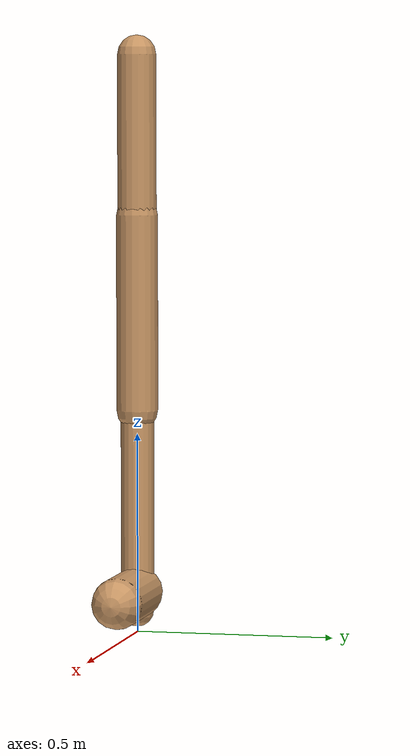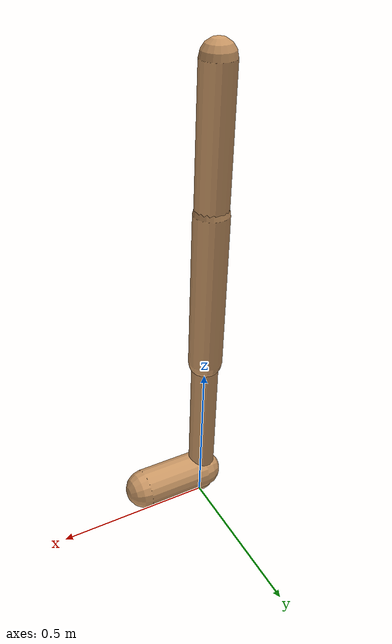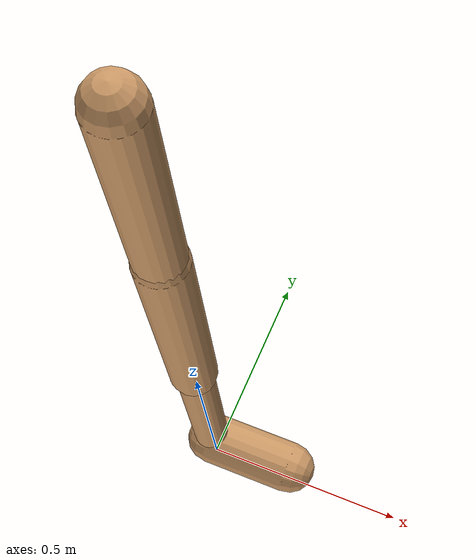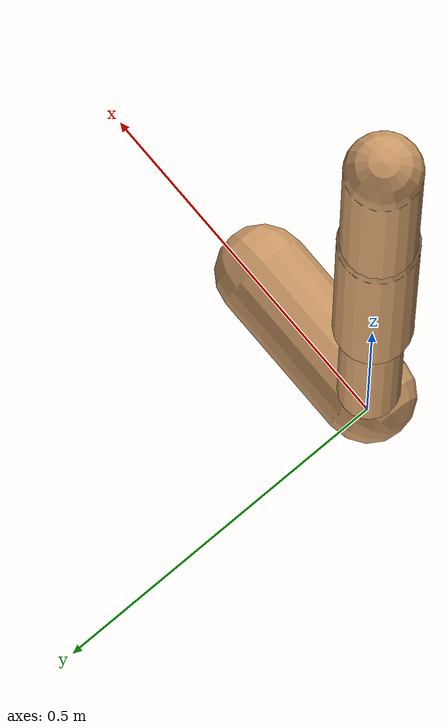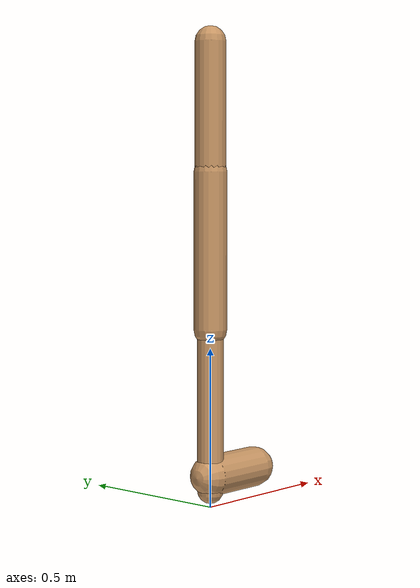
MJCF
<mujoco model="walker2d">
  <compiler angle="degree" coordinate="global" inertiafromgeom="true" />
  <default>
    <joint armature="0.01" damping=".1" limited="true" />
    <geom conaffinity="0" condim="3" contype="1" density="1000" friction="0.8 .1 .1" rgba="0.8 0.6 .4 1" />
  </default>
  <option integrator="RK4" timestep="0.002" />
  <worldbody>

    <body name="torso" pos="0 0 0.08574857287743018">
      <joint armature="0" axis="1 0 0" damping="0" limited="false" name="ignorex" pos="0 0 0" stiffness="0" type="slide" />
      <joint armature="0" axis="0 0 1" damping="0" limited="false" name="ignorez" pos="0 0 0" ref="1.25" stiffness="0" type="slide" />
      <joint armature="0" axis="0 1 0" damping="0" limited="false" name="ignorey" pos="0 0 0" stiffness="0" type="hinge" />
      <geom fromto="0 0 1.45 0 0 1.05" name="torso_geom" size="0.04865197347413752" type="capsule" />
      <body name="thigh">
        <joint axis="0 -1 0" name="thigh_joint" pos="0 0 1.05" range="-150 0" type="hinge" />
        <geom fromto="0.0 0.0 1.05 0.0 0.0 0.5593822549527963" name="thigh_geom" size="0.052007881760373575" type="capsule" />
        <body name="leg" pos="0.0 0.0 -0.040617745047203724">
          <joint axis="0 -1 0" name="leg_joint" pos="0 0 0.6" range="-150 0" type="hinge" />
          <geom fromto="0.0 0.0 0.6 0.0 0.0 0.0548691721697736" name="leg_geom" size="0.04160630540829886" type="capsule" />
          <body name="foot" pos="0.0 0.0 -0.04513082783022641">
            <joint axis="0 -1 0" name="foot_joint" pos="0 0 0.1" range="-45 45" type="hinge" />
            <geom fromto="-0.0 0.0 0.1 0.21084310429636935 0.0 0.1" name="foot_geom" size="0.06360807922490029" type="capsule" />
          </body>
        </body>
      </body>

      <body name="thigh_left">
        <joint axis="0 -1 0" name="thigh_left_joint" pos="0 0 1.05" range="-150 0" type="hinge" />
        <geom fromto="0.0 0.0 1.05 0.0 0.0 0.5593822549527963" name="thigh_left_geom" rgba=".7 .3 .6 1" size="0.052007881760373575" type="capsule" />
        <body name="leg_left" pos="0.0 0.0 -0.040617745047203724">
          <joint axis="0 -1 0" name="leg_left_joint" pos="0 0 0.6" range="-150 0" type="hinge" />
          <geom fromto="0.0 0.0 0.6 0.0 0.0 0.0548691721697736" name="leg_left_geom" rgba=".7 .3 .6 1" size="0.04160630540829886" type="capsule" />
          <body name="foot_left" pos="0.0 0.0 -0.04513082783022641">
            <joint axis="0 -1 0" name="foot_left_joint" pos="0 0 0.1" range="-45 45" type="hinge" />
            <geom fromto="-0.0 0.0 0.1 0.21084310429636935 0.0 0.1" name="foot_left_geom" rgba=".7 .3 .6 1" size="0.06360807922490029" type="capsule" />
          </body>
        </body>
      </body>
    </body>
  </worldbody>
  <actuator>

    <motor ctrllimited="true" ctrlrange="-1.0 1.0" gear="100" joint="thigh_joint" />
    <motor ctrllimited="true" ctrlrange="-1.0 1.0" gear="100" joint="leg_joint" />
    <motor ctrllimited="true" ctrlrange="-1.0 1.0" gear="100" joint="foot_joint" />
    <motor ctrllimited="true" ctrlrange="-1.0 1.0" gear="100" joint="thigh_left_joint" />
    <motor ctrllimited="true" ctrlrange="-1.0 1.0" gear="100" joint="leg_left_joint" />
    <motor ctrllimited="true" ctrlrange="-1.0 1.0" gear="100" joint="foot_left_joint" />

  </actuator>
</mujoco>
